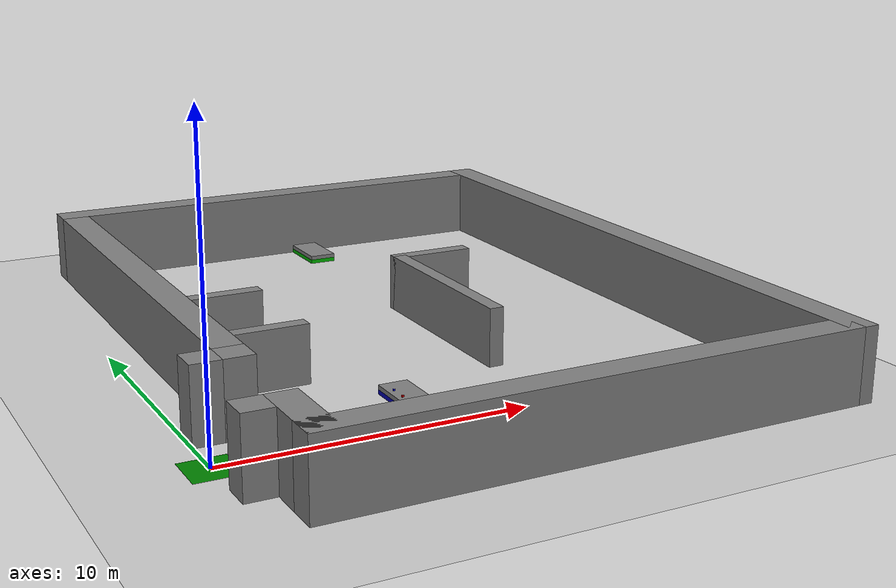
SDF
<sdf version='1.10'>
  <world name='empty'>
    <physics name='1ms' type='ignored'>
      <max_step_size>0.001</max_step_size>
      <real_time_factor>1</real_time_factor>
      <real_time_update_rate>1000</real_time_update_rate>
    </physics>
    <plugin name='gz::sim::systems::Physics' filename='gz-sim-physics-system'/>
    <plugin name='gz::sim::systems::UserCommands' filename='gz-sim-user-commands-system'/>
    <plugin name='gz::sim::systems::SceneBroadcaster' filename='gz-sim-scene-broadcaster-system'/>
    <plugin name='gz::sim::systems::Contact' filename='gz-sim-contact-system'/>
    <gravity>0 0 -9.8000000000000007</gravity>
    <magnetic_field>5.5644999999999998e-06 2.2875799999999999e-05 -4.2388400000000002e-05</magnetic_field>
    <atmosphere type='adiabatic'/>
    <scene>
      <ambient>0.400000006 0.400000006 0.400000006 1</ambient>
      <background>0.699999988 0.699999988 0.699999988 1</background>
      <shadows>false</shadows>
    </scene>
    <model name='ground_plane'>
      <static>true</static>
      <link name='link'>
        <collision name='collision'>
          <geometry>
            <plane>
              <normal>0 0 1</normal>
              <size>70 70</size>
            </plane>
          </geometry>
          <surface>
            <friction>
              <ode/>
            </friction>
            <bounce/>
            <contact/>
          </surface>
        </collision>
        <visual name='visual'>
          <geometry>
            <plane>
              <normal>0 0 1</normal>
              <size>70 70</size>
            </plane>
          </geometry>
          <material>
            <ambient>0.800000012 0.800000012 0.800000012 1</ambient>
            <diffuse>0.800000012 0.800000012 0.800000012 1</diffuse>
            <specular>0.800000012 0.800000012 0.800000012 1</specular>
          </material>
        </visual>
        <pose>0 0 0 0 0 0</pose>
        <inertial>
          <pose>0 0 0 0 0 0</pose>
          <mass>1</mass>
          <inertia>
            <ixx>1</ixx>
            <ixy>0</ixy>
            <ixz>0</ixz>
            <iyy>1</iyy>
            <iyz>0</iyz>
            <izz>1</izz>
          </inertia>
        </inertial>
        <enable_wind>false</enable_wind>
      </link>
      <pose>0 0 0 0 0 0</pose>
      <self_collide>false</self_collide>
    </model>
    <light name='sun' type='directional'>
      <pose>0 0 10 0 0 0</pose>
      <cast_shadows>false</cast_shadows>
      <intensity>1</intensity>
      <direction>-0.5 0.10000000000000001 -0.90000000000000002</direction>
      <diffuse>0.800000012 0.800000012 0.800000012 1</diffuse>
      <specular>0.200000003 0.200000003 0.200000003 1</specular>
      <attenuation>
        <range>1000</range>
        <linear>0.01</linear>
        <constant>0.90000000000000002</constant>
        <quadratic>0.001</quadratic>
      </attenuation>
      <spot>
        <inner_angle>0</inner_angle>
        <outer_angle>0</outer_angle>
        <falloff>0</falloff>
      </spot>
    </light>

    <model name='pick_table_top'>
      <static>true</static>
      <pose>7 2 0.225 0 0 0</pose> <link name='link'>
        <collision name='collision'>
          <geometry>
            <box>
              <size>1 2 0.15</size>
            </box>
          </geometry>
        </collision>
        <visual name='visual'>
          <geometry>
            <box>
              <size>1 2 0.15</size>
            </box>
          </geometry>
          <material>
            <ambient>0.8 0.0 0.0 1.0</ambient>

            <diffuse>0.5 0.5 0.5 1.0</diffuse>

            <specular>0.5 0.5 0.5 1.0</specular>
          </material>
        </visual>
      </link>
    </model>

    <model name='red_tag_0'>
      <plugin filename="libgz-sim-pose-publisher-system.so"
            name="gz::sim::systems::PosePublisher">
        <!-- Ativa a publicação da pose do modelo principal -->
        <publish_model_pose>true</publish_model_pose>

        <!-- Desativa a publicação dos links e modelos aninhados para não gerar conflito -->
        <publish_link_pose>false</publish_link_pose>
        <publish_nested_model_pose>false</publish_nested_model_pose>

        <!-- OBRIGATÓRIO: false para enviar uma mensagem Pose simples (não um array) -->
        <use_pose_vector_msg>false</use_pose_vector_msg>

        <update_frequency>50</update_frequency>
      </plugin>
      <static>false</static>
      <pose>6.7 1.7 0.340 0 0 0</pose> <link name='link'>
      <inertial>
        <mass>0.05</mass>
        <inertia>
          <ixx>0.00003</ixx>
          <ixy>0</ixy>
          <ixz>0</ixz>
          <iyy>0.00003</iyy>
          <iyz>0</iyz>
          <izz>0.00003</izz>
        </inertia>
      </inertial>
        <collision name='collision'>
          <geometry>
            <box>
              <size>0.06 0.06 0.06</size>
            </box>
          </geometry>
        </collision>
        <visual name='visual'>
          <geometry>
            <box>
              <size>0.06 0.06 0.06</size>
            </box>
          </geometry>
          <material>
            <ambient>0.8 0.0 0.0 1.0</ambient>

            <diffuse>0.9 0.0 0.0 1.0</diffuse>

            <specular>0.5 0.5 0.5 1.0</specular>
          </material>
        </visual>

        <visual name='tag_visual'>
          <!-- Posicionado no topo do cubo (Z = 0.03 + um pequeno offset para evitar Z-fighting) -->
          <pose>0 0 0.0301 0 0 0</pose>
          <geometry>
            <plane>
              <normal>0 0 1</normal>
              <size>0.05 0.05</size> <!-- Tag ligeiramente menor que o bloco -->
            </plane>
          </geometry>
          <material>
            <diffuse>1.0 1.0 1.0 1.0</diffuse>
            <specular>0 0 0 1</specular>
            <pbr>
              <metal>
                <albedo_map>file:///home/lln/Navigation/install/orion_bringup/share/orion_bringup/tags/high_res_tag_0.png</albedo_map>
              </metal>
            </pbr>
          </material>
        </visual>

      </link>
    </model>

    <model name='blue_tag_1'>
      <plugin filename="libgz-sim-pose-publisher-system.so"
            name="gz::sim::systems::PosePublisher">
        <!-- Ativa a publicação da pose do modelo principal -->
        <publish_model_pose>true</publish_model_pose>

        <!-- Desativa a publicação dos links e modelos aninhados para não gerar conflito -->
        <publish_link_pose>false</publish_link_pose>
        <publish_nested_model_pose>false</publish_nested_model_pose>

        <!-- OBRIGATÓRIO: false para enviar uma mensagem Pose simples (não um array) -->
        <use_pose_vector_msg>false</use_pose_vector_msg>

        <update_frequency>50</update_frequency>
      </plugin>
      <static>false</static>
      <pose>6.7 2.3 0.340 0 0 0</pose> <link name='link'>
      <inertial>
        <mass>0.05</mass>
        <inertia>
          <ixx>0.00003</ixx>
          <ixy>0</ixy>
          <ixz>0</ixz>
          <iyy>0.00003</iyy>
          <iyz>0</iyz>
          <izz>0.00003</izz>
        </inertia>
      </inertial>
        <collision name='collision'>
          <geometry>
            <box>
              <size>0.06 0.06 0.06</size>
            </box>
          </geometry>
        </collision>
        <visual name='visual'>
          <geometry>
            <box>
              <size>0.06 0.06 0.06</size>
            </box>
          </geometry>
          <material>
            <ambient>0.8 0.0 0.0 1.0</ambient>

            <diffuse>0.0 0.0 0.9 1.0</diffuse>

            <specular>0.5 0.5 0.5 1.0</specular>
          </material>
        </visual>

        <visual name='tag_visual'>
          <!-- Posicionado no topo do cubo (Z = 0.03 + um pequeno offset para evitar Z-fighting) -->
          <pose>0 0 0.0301 0 0 0</pose>
          <geometry>
            <plane>
              <normal>0 0 1</normal>
              <size>0.05 0.05</size> <!-- Tag ligeiramente menor que o bloco -->
            </plane>
          </geometry>
          <material>
            <diffuse>1.0 1.0 1.0 1.0</diffuse>
            <specular>0 0 0 1</specular>
            <pbr>
              <metal>
                <albedo_map>file:///home/lln/Navigation/install/orion_bringup/share/orion_bringup/tags/high_res_tag_1.png</albedo_map>
              </metal>
            </pbr>
          </material>
        </visual>

      </link>
    </model>

    <model name='start_point'>
      <static>true</static>
      <pose>0 0 0.001 0 0 0</pose> <link name='link'>
        <visual name='visual'>
          <geometry>
            <box>
              <size>1.5 1.5 0</size>
            </box>
          </geometry>
          <material>
            <ambient>0.8 0.0 0.0 1.0</ambient>

            <diffuse>0.0 0.5 0.0 1.0</diffuse>

            <specular>0.5 0.5 0.5 1.0</specular>
          </material>
        </visual>
      </link>
    </model>

    <model name='finish_point'>
      <static>true</static>
      <pose>3 7 0.001 0 0 0</pose> <link name='link'>
        <visual name='visual'>
          <geometry>
            <box>
              <size>1.5 1.5 0</size>
            </box>
          </geometry>
          <material>
            <ambient>0.8 0.0 0.0 1.0</ambient>

            <diffuse>0.5 0.0 0.0 1.0</diffuse>

            <specular>0.5 0.5 0.5 1.0</specular>
          </material>
        </visual>
      </link>
    </model>

    <model name='pick_table_bot'>
      <static>true</static>
      <pose>7 2 0.075 0 0 0</pose> <link name='link'>
        <collision name='collision'>
          <geometry>
            <box>
              <size>1 2 0.15</size>
            </box>
          </geometry>
        </collision>
        <visual name='visual'>
          <geometry>
            <box>
              <size>1 2 0.15</size>
            </box>
          </geometry>
          <material>
            <ambient>0.8 0.0 0.0 1.0</ambient>

            <diffuse>0.0 0.0 0.7 1.0</diffuse>

            <specular>0.5 0.5 0.5 1.0</specular>
          </material>
        </visual>
      </link>
    </model>

    <model name='place_table_top'>
      <static>true</static>
      <pose>4 14 0.225 0 0 1.57</pose> <link name='link'>
        <collision name='collision'>
          <geometry>
            <box>
              <size>1 2 0.15</size>
            </box>
          </geometry>
        </collision>
        <visual name='visual'>
          <geometry>
            <box>
              <size>1 2 0.15</size>
            </box>
          </geometry>
          <material>
            <ambient>0.8 0.0 0.0 1.0</ambient>

            <diffuse>0.5 0.5 0.5 1.0</diffuse>

            <specular>0.5 0.5 0.5 1.0</specular>
          </material>
        </visual>
      </link>
    </model>

    <model name='place_table_bot'>
      <static>true</static>
      <pose>4 14 0.075 0 0 1.57</pose> <link name='link'>
        <collision name='collision'>
          <geometry>
            <box>
              <size>1 2 0.15</size>
            </box>
          </geometry>
        </collision>
        <visual name='visual'>
          <geometry>
            <box>
              <size>1 2 0.15</size>
            </box>
          </geometry>
          <material>
            <ambient>0.8 0.0 0.0 1.0</ambient>

            <diffuse>0.7 0.0 0.0 1.0</diffuse>

            <specular>0.5 0.5 0.5 1.0</specular>
          </material>
        </visual>
      </link>
    </model>

    <model name='precision_table_top'>
      <static>true</static>
      <pose>11 18.5 0.225 0 0 0</pose> <link name='link'>
        <collision name='collision'>
          <geometry>
            <box>
              <size>1 2 0.15</size>
            </box>
          </geometry>
        </collision>
        <visual name='visual'>
          <geometry>
            <box>
              <size>1 2 0.15</size>
            </box>
          </geometry>
          <material>
            <ambient>0.8 0.0 0.0 1.0</ambient>

            <diffuse>0.5 0.5 0.5 1.0</diffuse>

            <specular>0.5 0.5 0.5 1.0</specular>
          </material>
        </visual>
      </link>
    </model>

    <model name='precision_table_bot'>
      <static>true</static>
      <pose>11 18.5 0.075 0 0 0</pose> <link name='link'>
        <collision name='collision'>
          <geometry>
            <box>
              <size>1 2 0.15</size>
            </box>
          </geometry>
        </collision>
        <visual name='visual'>
          <geometry>
            <box>
              <size>1 2 0.15</size>
            </box>
          </geometry>
          <material>
            <ambient>0.8 0.0 0.0 1.0</ambient>

            <diffuse>0.0 0.7 0.0 1.0</diffuse>

            <specular>0.5 0.5 0.5 1.0</specular>
          </material>
        </visual>
      </link>
    </model>

    <model name='wall_1'>
      <static>true</static>
      <pose>19 8 1.25 0 0 0</pose> <link name='link'>
        <collision name='collision'>
          <geometry>
            <box>
              <size>1 25 2.5</size>
            </box>
          </geometry>
        </collision>
        <visual name='visual'>
          <geometry>
            <box>
              <size>1 25 2.5</size>
            </box>
          </geometry>
          <material>
            <ambient>0.8 0.0 0.0 1.0</ambient>

            <diffuse>0.5 0.5 0.5 1.0</diffuse>

            <specular>0.5 0.5 0.5 1.0</specular>
          </material>
        </visual>
      </link>
    </model>

    <model name='wall_2'>
      <static>true</static>
      <pose>1.5 11 1.25 0 0 0</pose> <link name='link'>
        <collision name='collision'>
          <geometry>
            <box>
              <size>2 18 2.5</size>
            </box>
          </geometry>
        </collision>
        <visual name='visual'>
          <geometry>
            <box>
              <size>1 18 2.5</size>
            </box>
          </geometry>
          <material>
            <ambient>0.8 0.0 0.0 1.0</ambient>

            <diffuse>0.5 0.5 0.5 1.0</diffuse>

            <specular>0.5 0.5 0.5 1.0</specular>
          </material>
        </visual>
      </link>
    </model>

    <model name='wall_3'>
      <static>true</static>
      <pose>10 -4 1.25 0 0 0</pose> <link name='link'>
        <collision name='collision'>
          <geometry>
            <box>
              <size>18 1 2.5</size>
            </box>
          </geometry>
        </collision>
        <visual name='visual'>
          <geometry>
            <box>
              <size>18 1 2.5</size>
            </box>
          </geometry>
          <material>
            <ambient>0.8 0.0 0.0 1.0</ambient>

            <diffuse>0.5 0.5 0.5 1.0</diffuse>

            <specular>0.5 0.5 0.5 1.0</specular>
          </material>
        </visual>
      </link>
    </model>

    <model name='wall_4'>
      <static>true</static>
      <pose>10 20 1.25 0 0 0</pose> <link name='link'>
        <collision name='collision'>
          <geometry>
            <box>
              <size>18 1 2.5</size>
            </box>
          </geometry>
        </collision>
        <visual name='visual'>
          <geometry>
            <box>
              <size>18 1 2.5</size>
            </box>
          </geometry>
          <material>
            <ambient>0.8 0.0 0.0 1.0</ambient>

            <diffuse>0.5 0.5 0.5 1.0</diffuse>

            <specular>0.5 0.5 0.5 1.0</specular>
          </material>
        </visual>
      </link>
    </model>

    <model name='wall_5'>
      <static>true</static>
      <pose>1.5 -3 1.25 0 0 0</pose> <link name='link'>
        <collision name='collision'>
          <geometry>
            <box>
              <size>1 3 2.5</size>
            </box>
          </geometry>
        </collision>
        <visual name='visual'>
          <geometry>
            <box>
              <size>1 3 2.5</size>
            </box>
          </geometry>
          <material>
            <ambient>0.8 0.0 0.0 1.0</ambient>

            <diffuse>0.5 0.5 0.5 1.0</diffuse>

            <specular>0.5 0.5 0.5 1.0</specular>
          </material>
        </visual>
      </link>
    </model>

    <model name='wall_6'>
      <static>true</static>
      <pose>1.5 2 1.25 0 0 0</pose> <link name='link'>
        <collision name='collision'>
          <geometry>
            <box>
              <size>1 1 2.5</size>
            </box>
          </geometry>
        </collision>
        <visual name='visual'>
          <geometry>
            <box>
              <size>1 1 2.5</size>
            </box>
          </geometry>
          <material>
            <ambient>0.8 0.0 0.0 1.0</ambient>

            <diffuse>0.5 0.5 0.5 1.0</diffuse>

            <specular>0.5 0.5 0.5 1.0</specular>
          </material>
        </visual>
      </link>
    </model>

    <model name='gate_1'>
      <static>true</static>
      <pose>0.5 2 1.25 0 0 0</pose> <link name='link'>
        <collision name='collision'>
          <geometry>
            <box>
              <size>2 1 2.5</size>
            </box>
          </geometry>
        </collision>
        <visual name='visual'>
          <geometry>
            <box>
              <size>1 1 2.5</size>
            </box>
          </geometry>
          <material>
            <ambient>0.8 0.0 0.0 1.0</ambient>

            <diffuse>0.5 0.5 0.5 1.0</diffuse>

            <specular>0.5 0.5 0.5 1.0</specular>
          </material>
        </visual>
      </link>
    </model>

    <model name='gate_2'>
      <static>true</static>
      <pose>0.5 -2 1.25 0 0 0</pose> <link name='link'>
        <collision name='collision'>
          <geometry>
            <box>
              <size>2 1 2.5</size>
            </box>
          </geometry>
        </collision>
        <visual name='visual'>
          <geometry>
            <box>
              <size>1 1 2.5</size>
            </box>
          </geometry>
          <material>
            <ambient>0.8 0.0 0.0 1.0</ambient>

            <diffuse>0.5 0.5 0.5 1.0</diffuse>

            <specular>0.5 0.5 0.5 1.0</specular>
          </material>
        </visual>
      </link>
    </model>

    <model name='obstacle_1'>
      <static>true</static>
      <pose>3.5 5 1 0 0 0</pose> <link name='link'>
        <collision name='collision'>
          <geometry>
            <box>
              <size>3 0.5 2</size>
            </box>
          </geometry>
        </collision>
        <visual name='visual'>
          <geometry>
            <box>
              <size>3 0.5 2</size>
            </box>
          </geometry>
          <material>
            <ambient>0.8 0.0 0.0 1.0</ambient>

            <diffuse>0.5 0.5 0.5 1.0</diffuse>

            <specular>0.5 0.5 0.5 1.0</specular>
          </material>
        </visual>
      </link>
    </model>

    <model name='obstacle_2'>
      <static>true</static>
      <pose>3.5 9 1 0 0 0</pose> <link name='link'>
        <collision name='collision'>
          <geometry>
            <box>
              <size>3 0.5 2</size>
            </box>
          </geometry>
        </collision>
        <visual name='visual'>
          <geometry>
            <box>
              <size>3 0.5 2</size>
            </box>
          </geometry>
          <material>
            <ambient>0.8 0.0 0.0 1.0</ambient>

            <diffuse>0.5 0.5 0.5 1.0</diffuse>

            <specular>0.5 0.5 0.5 1.0</specular>
          </material>
        </visual>
      </link>
    </model>

    <model name='obstacle_3'>
      <static>true</static>
      <pose>11 7 1 0 0 0</pose> <link name='link'>
        <collision name='collision'>
          <geometry>
            <box>
              <size>0.5 7 2</size>
            </box>
          </geometry>
        </collision>
        <visual name='visual'>
          <geometry>
            <box>
              <size>0.5 7 2</size>
            </box>
          </geometry>
          <material>
            <ambient>0.8 0.0 0.0 1.0</ambient>

            <diffuse>0.5 0.5 0.5 1.0</diffuse>

            <specular>0.5 0.5 0.5 1.0</specular>
          </material>
        </visual>
      </link>
    </model>

    <model name='obstacle_4'>
      <static>true</static>
      <pose>12.25 10.5 1 0 0 0</pose> <link name='link'>
        <collision name='collision'>
          <geometry>
            <box>
              <size>0.5 6 2</size>
            </box>
          </geometry>
        </collision>
        <visual name='visual'>
          <geometry>
            <box>
              <size>3 0.5 2</size>
            </box>
          </geometry>
          <material>
            <ambient>0.8 0.0 0.0 1.0</ambient>

            <diffuse>0.5 0.5 0.5 1.0</diffuse>

            <specular>0.5 0.5 0.5 1.0</specular>
          </material>
        </visual>
      </link>
    </model>

  </world>
</sdf>
